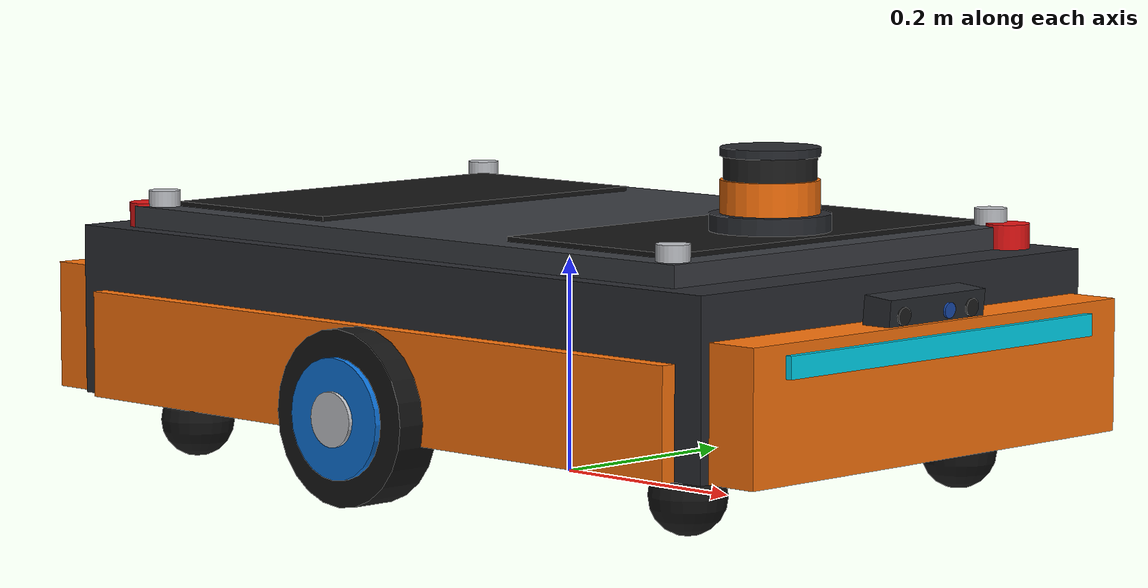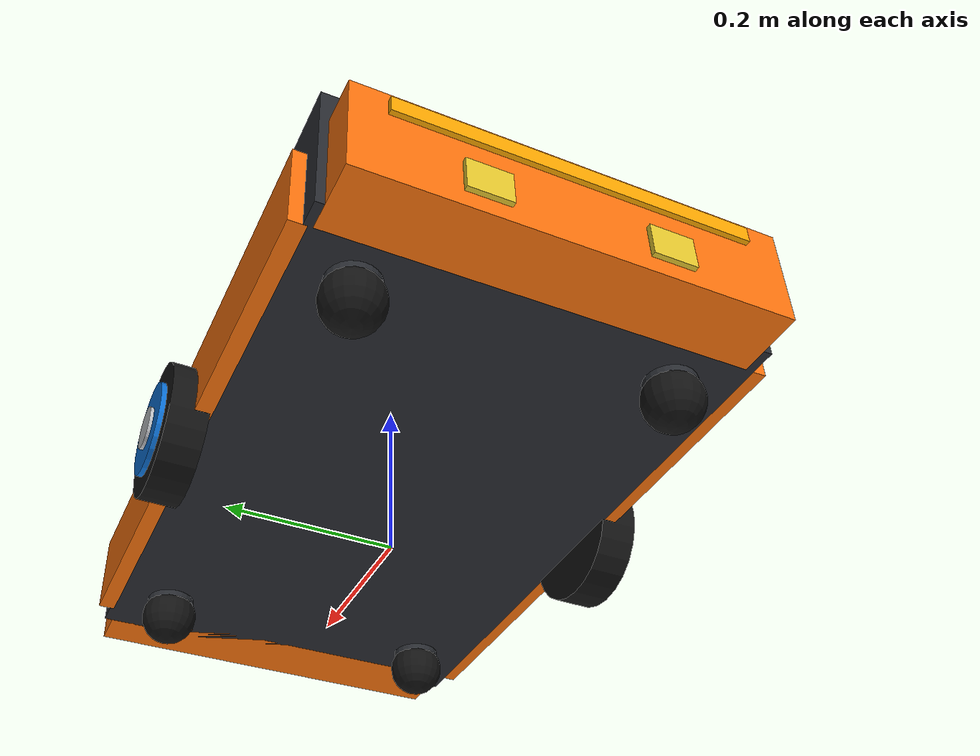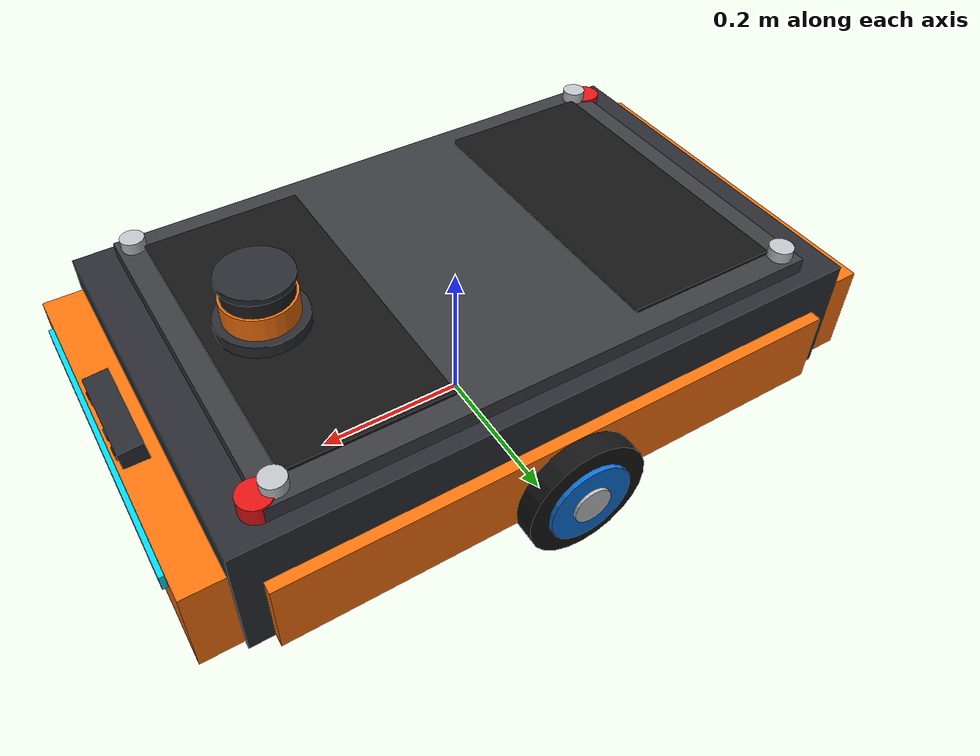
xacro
<?xml version="1.0"?>
<robot xmlns:xacro="http://www.ros.org/wiki/xacro" name="titan_warehouse_amr">

  <!-- ==================== ROBOT CORE DEFINITIONS ==================== -->
  <xacro:include filename="materials.xacro"/>
  <xacro:include filename="inertial_macros.xacro"/>
  <xacro:include filename="chassis.xacro"/>
  <xacro:include filename="wheels.xacro"/>
  <xacro:include filename="lifter.xacro"/>
  <xacro:include filename="sensors.xacro"/>
  <xacro:include filename="gazebo_plugins.xacro"/>

</robot>

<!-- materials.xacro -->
<robot xmlns:xacro="http://www.ros.org/wiki/xacro">

  <material name="industrial_orange">
    <color rgba="0.98 0.45 0.05 1.0"/>
  </material>

  <material name="anthracite_grey">
    <color rgba="0.16 0.17 0.19 1.0"/>
  </material>

  <material name="light_grey">
    <color rgba="0.75 0.76 0.78 1.0"/>
  </material>

  <material name="rubber_black">
    <color rgba="0.08 0.08 0.08 1.0"/>
  </material>

  <material name="rim_blue">
    <color rgba="0.05 0.45 0.85 1.0"/>
  </material>

  <material name="emergency_red">
    <color rgba="0.9 0.08 0.08 1.0"/>
  </material>

  <material name="safety_yellow">
    <color rgba="0.95 0.8 0.05 1.0"/>
  </material>

  <material name="docking_gold">
    <color rgba="0.9 0.78 0.18 1.0"/>
  </material>

  <material name="led_cyan">
    <color rgba="0.0 0.85 0.95 0.9"/>
  </material>

  <material name="led_amber">
    <color rgba="0.98 0.65 0.0 0.9"/>
  </material>

  <material name="camera_black">
    <color rgba="0.12 0.12 0.12 1.0"/>
  </material>

  <material name="sensor_blue">
    <color rgba="0.1 0.3 0.7 1.0"/>
  </material>

  <material name="cargo_bed_dark">
    <color rgba="0.22 0.23 0.25 1.0"/>
  </material>

</robot>

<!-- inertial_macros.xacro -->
<robot xmlns:xacro="http://www.ros.org/wiki/xacro">

  <!-- Inertia for a rectangular cuboid -->
  <xacro:macro name="inertial_box" params="mass x y z *origin">
    <inertial>
      <xacro:insert_block name="origin"/>
      <mass value="${mass}"/>
      <inertia ixx="${(1/12) * mass * (y*y + z*z)}" ixy="0.0" ixz="0.0"
               iyy="${(1/12) * mass * (x*x + z*z)}" iyz="0.0"
               izz="${(1/12) * mass * (x*x + y*y)}"/>
    </inertial>
  </xacro:macro>

  <!-- Inertia for a solid cylinder along Z -->
  <xacro:macro name="inertial_cylinder" params="mass length radius *origin">
    <inertial>
      <xacro:insert_block name="origin"/>
      <mass value="${mass}"/>
      <inertia ixx="${(1/12) * mass * (3*radius*radius + length*length)}" ixy="0.0" ixz="0.0"
               iyy="${(1/12) * mass * (3*radius*radius + length*length)}" iyz="0.0"
               izz="${(1/2) * mass * (radius*radius)}"/>
    </inertial>
  </xacro:macro>

  <!-- Inertia for a solid sphere -->
  <xacro:macro name="inertial_sphere" params="mass radius *origin">
    <inertial>
      <xacro:insert_block name="origin"/>
      <mass value="${mass}"/>
      <inertia ixx="${(2/5) * mass * (radius*radius)}" ixy="0.0" ixz="0.0"
               iyy="${(2/5) * mass * (radius*radius)}" iyz="0.0"
               izz="${(2/5) * mass * (radius*radius)}"/>
    </inertial>
  </xacro:macro>

</robot>

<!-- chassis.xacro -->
<robot xmlns:xacro="http://www.ros.org/wiki/xacro">

  <!-- BASE FOOTPRINT (Ground Projection) -->
  <link name="base_footprint"/>

  <joint name="base_joint" type="fixed">
    <parent link="base_footprint"/>
    <child link="base_link"/>
    <origin xyz="0 0 0.08" rpy="0 0 0"/>
  </joint>

  <!-- BASE LINK (Chassis Structural Core) -->
  <link name="base_link">
    <!-- Main Center Core Body -->
    <visual>
      <origin xyz="0 0 0.06" rpy="0 0 0"/>
      <geometry>
        <box size="0.80 0.50 0.16"/>
      </geometry>
      <material name="anthracite_grey"/>
    </visual>
    <collision>
      <origin xyz="0 0 0.06" rpy="0 0 0"/>
      <geometry>
        <box size="0.80 0.50 0.16"/>
      </geometry>
    </collision>

    <!-- Front Chamfered Safety Bumper -->
    <visual>
      <origin xyz="0.41 0 0.04" rpy="0 0 0"/>
      <geometry>
        <box size="0.08 0.48 0.12"/>
      </geometry>
      <material name="industrial_orange"/>
    </visual>
    <collision>
      <origin xyz="0.41 0 0.04" rpy="0 0 0"/>
      <geometry>
        <box size="0.08 0.48 0.12"/>
      </geometry>
    </collision>

    <!-- Rear Chamfered Bumper with Docking Recess -->
    <visual>
      <origin xyz="-0.41 0 0.04" rpy="0 0 0"/>
      <geometry>
        <box size="0.08 0.48 0.12"/>
      </geometry>
      <material name="industrial_orange"/>
    </visual>
    <collision>
      <origin xyz="-0.41 0 0.04" rpy="0 0 0"/>
      <geometry>
        <box size="0.08 0.48 0.12"/>
      </geometry>
    </collision>

    <!-- Side Skirt Protective Panels Left -->
    <visual>
      <origin xyz="0 0.255 0.03" rpy="0 0 0"/>
      <geometry>
        <box size="0.74 0.02 0.10"/>
      </geometry>
      <material name="industrial_orange"/>
    </visual>

    <!-- Side Skirt Protective Panels Right -->
    <visual>
      <origin xyz="0 -0.255 0.03" rpy="0 0 0"/>
      <geometry>
        <box size="0.74 0.02 0.10"/>
      </geometry>
      <material name="industrial_orange"/>
    </visual>

    <!-- Front LED Status Light Bar (Cyan / Amber Navigation Indicator) -->
    <visual>
      <origin xyz="0.451 0 0.08" rpy="0 0 0"/>
      <geometry>
        <box size="0.01 0.40 0.02"/>
      </geometry>
      <material name="led_cyan"/>
    </visual>

    <!-- Rear LED Status Light Bar (Brake & Docking Indicator) -->
    <visual>
      <origin xyz="-0.451 0 0.08" rpy="0 0 0"/>
      <geometry>
        <box size="0.01 0.40 0.02"/>
      </geometry>
      <material name="led_amber"/>
    </visual>

    <!-- Emergency Stop Button 1 (Front Left) -->
    <visual>
      <origin xyz="0.35 0.21 0.15" rpy="0 0 0"/>
      <geometry>
        <cylinder radius="0.02" length="0.025"/>
      </geometry>
      <material name="emergency_red"/>
    </visual>

    <!-- Emergency Stop Button 2 (Rear Right) -->
    <visual>
      <origin xyz="-0.35 -0.21 0.15" rpy="0 0 0"/>
      <geometry>
        <cylinder radius="0.02" length="0.025"/>
      </geometry>
      <material name="emergency_red"/>
    </visual>

    <!-- Rear Auto-Docking Contact Plates (Left & Right Conductive Terminals) -->
    <visual>
      <origin xyz="-0.452 0.10 0.02" rpy="0 0 0"/>
      <geometry>
        <box size="0.008 0.05 0.04"/>
      </geometry>
      <material name="docking_gold"/>
    </visual>
    <visual>
      <origin xyz="-0.452 -0.10 0.02" rpy="0 0 0"/>
      <geometry>
        <box size="0.008 0.05 0.04"/>
      </geometry>
      <material name="docking_gold"/>
    </visual>

    <!-- Inertial Parameters for AMR Chassis -->
    <xacro:inertial_box mass="32.0" x="0.85" y="0.54" z="0.20">
      <origin xyz="0 0 0.05" rpy="0 0 0"/>
    </xacro:inertial_box>
  </link>

  <!-- Gazebo Material and Friction settings for Chassis -->
  <gazebo reference="base_link">
    <material>Gazebo/DarkGrey</material>
    <mu1>0.2</mu1>
    <mu2>0.2</mu2>
  </gazebo>

</robot>

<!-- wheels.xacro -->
<robot xmlns:xacro="http://www.ros.org/wiki/xacro">

  <!-- DRIVE WHEEL MACRO -->
  <xacro:macro name="drive_wheel" params="prefix y_offset reflect">
    <link name="${prefix}_wheel">
      <!-- Outer Rubber Tire -->
      <visual>
        <origin xyz="0 0 0" rpy="${pi/2} 0 0"/>
        <geometry>
          <cylinder radius="0.08" length="0.045"/>
        </geometry>
        <material name="rubber_black"/>
      </visual>

      <!-- Inner Alloy Rim -->
      <visual>
        <origin xyz="0 ${reflect * 0.005} 0" rpy="${pi/2} 0 0"/>
        <geometry>
          <cylinder radius="0.055" length="0.047"/>
        </geometry>
        <material name="rim_blue"/>
      </visual>

      <!-- Wheel Axle Hub Cap -->
      <visual>
        <origin xyz="0 ${reflect * 0.015} 0" rpy="${pi/2} 0 0"/>
        <geometry>
          <cylinder radius="0.025" length="0.035"/>
        </geometry>
        <material name="light_grey"/>
      </visual>

      <collision>
        <origin xyz="0 0 0" rpy="${pi/2} 0 0"/>
        <geometry>
          <cylinder radius="0.08" length="0.045"/>
        </geometry>
      </collision>

      <xacro:inertial_cylinder mass="2.5" length="0.045" radius="0.08">
        <origin xyz="0 0 0" rpy="${pi/2} 0 0"/>
      </xacro:inertial_cylinder>
    </link>

    <joint name="${prefix}_wheel_joint" type="continuous">
      <parent link="base_link"/>
      <child link="${prefix}_wheel"/>
      <origin xyz="0 ${y_offset} 0" rpy="0 0 0"/>
      <axis xyz="0 1 0"/>
    </joint>

    <gazebo reference="${prefix}_wheel">
      <material>Gazebo/FlatBlack</material>
      <mu1>1.8</mu1>
      <mu2>1.8</mu2>
      <kp>1000000.0</kp>
      <kd>100.0</kd>
      <minDepth>0.001</minDepth>
      <maxVel>1.5</maxVel>
    </gazebo>
  </xacro:macro>

  <!-- INSTANTIATE DRIVE WHEELS -->
  <xacro:drive_wheel prefix="left" y_offset="0.27" reflect="1"/>
  <xacro:drive_wheel prefix="right" y_offset="-0.27" reflect="-1"/>

  <!-- CASTER WHEEL MACRO -->
  <xacro:macro name="caster_wheel" params="prefix x_offset y_offset">
    <!-- Caster Bracket / Swivel Mount -->
    <link name="${prefix}_caster_mount">
      <visual>
        <origin xyz="0 0 0" rpy="0 0 0"/>
        <geometry>
          <cylinder radius="0.03" length="0.04"/>
        </geometry>
        <material name="anthracite_grey"/>
      </visual>
      <collision>
        <origin xyz="0 0 0" rpy="0 0 0"/>
        <geometry>
          <cylinder radius="0.03" length="0.04"/>
        </geometry>
      </collision>
      <xacro:inertial_cylinder mass="0.5" length="0.04" radius="0.03">
        <origin xyz="0 0 0" rpy="0 0 0"/>
      </xacro:inertial_cylinder>
    </link>

    <joint name="${prefix}_caster_mount_joint" type="fixed">
      <parent link="base_link"/>
      <child link="${prefix}_caster_mount"/>
      <origin xyz="${x_offset} ${y_offset} -0.025" rpy="0 0 0"/>
    </joint>

    <!-- Caster Rolling Wheel -->
    <link name="${prefix}_caster_wheel">
      <visual>
        <origin xyz="0 0 0" rpy="0 0 0"/>
        <geometry>
          <sphere radius="0.035"/>
        </geometry>
        <material name="rubber_black"/>
      </visual>
      <collision>
        <origin xyz="0 0 0" rpy="0 0 0"/>
        <geometry>
          <sphere radius="0.035"/>
        </geometry>
      </collision>
      <xacro:inertial_sphere mass="0.8" radius="0.035">
        <origin xyz="0 0 0" rpy="0 0 0"/>
      </xacro:inertial_sphere>
    </link>

    <joint name="${prefix}_caster_wheel_joint" type="fixed">
      <parent link="${prefix}_caster_mount"/>
      <child link="${prefix}_caster_wheel"/>
      <origin xyz="0 0 -0.02" rpy="0 0 0"/>
    </joint>

    <gazebo reference="${prefix}_caster_wheel">
      <material>Gazebo/DarkGrey</material>
      <mu1>0.001</mu1>
      <mu2>0.001</mu2>
      <kp>1000000.0</kp>
      <kd>100.0</kd>
      <minDepth>0.001</minDepth>
    </gazebo>
  </xacro:macro>

  <!-- 4-POINT STABILITY CASTERS -->
  <xacro:caster_wheel prefix="front_left" x_offset="0.32" y_offset="0.18"/>
  <xacro:caster_wheel prefix="front_right" x_offset="0.32" y_offset="-0.18"/>
  <xacro:caster_wheel prefix="rear_left" x_offset="-0.32" y_offset="0.18"/>
  <xacro:caster_wheel prefix="rear_right" x_offset="-0.32" y_offset="-0.18"/>

</robot>

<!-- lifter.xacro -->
<robot xmlns:xacro="http://www.ros.org/wiki/xacro">

  <!-- LIFTER TOP CARGO BED -->
  <link name="lifter_plate">
    <!-- Main Top Load-Bearing Platform -->
    <visual>
      <origin xyz="0 0 0" rpy="0 0 0"/>
      <geometry>
        <box size="0.70 0.46 0.02"/>
      </geometry>
      <material name="cargo_bed_dark"/>
    </visual>
    <collision>
      <origin xyz="0 0 0" rpy="0 0 0"/>
      <geometry>
        <box size="0.70 0.46 0.02"/>
      </geometry>
    </collision>

    <!-- High-Grip Rubber Friction Pads (Front & Rear) -->
    <visual>
      <origin xyz="0.22 0 0.012" rpy="0 0 0"/>
      <geometry>
        <box size="0.20 0.40 0.005"/>
      </geometry>
      <material name="rubber_black"/>
    </visual>
    <visual>
      <origin xyz="-0.22 0 0.012" rpy="0 0 0"/>
      <geometry>
        <box size="0.20 0.40 0.005"/>
      </geometry>
      <material name="rubber_black"/>
    </visual>

    <!-- Corner Alignment Guide Rollers -->
    <visual>
      <origin xyz="0.33 0.21 0.015" rpy="0 0 0"/>
      <geometry>
        <cylinder radius="0.015" length="0.02"/>
      </geometry>
      <material name="light_grey"/>
    </visual>
    <visual>
      <origin xyz="0.33 -0.21 0.015" rpy="0 0 0"/>
      <geometry>
        <cylinder radius="0.015" length="0.02"/>
      </geometry>
      <material name="light_grey"/>
    </visual>
    <visual>
      <origin xyz="-0.33 0.21 0.015" rpy="0 0 0"/>
      <geometry>
        <cylinder radius="0.015" length="0.02"/>
      </geometry>
      <material name="light_grey"/>
    </visual>
    <visual>
      <origin xyz="-0.33 -0.21 0.015" rpy="0 0 0"/>
      <geometry>
        <cylinder radius="0.015" length="0.02"/>
      </geometry>
      <material name="light_grey"/>
    </visual>

    <xacro:inertial_box mass="4.0" x="0.70" y="0.46" z="0.03">
      <origin xyz="0 0 0" rpy="0 0 0"/>
    </xacro:inertial_box>
  </link>

  <!-- PRISMATIC JOINT FOR VERTICAL LIFT MECHANISM -->
  <joint name="lifter_joint" type="prismatic">
    <parent link="base_link"/>
    <child link="lifter_plate"/>
    <origin xyz="0 0 0.15" rpy="0 0 0"/>
    <axis xyz="0 0 1"/>
    <limit lower="0.0" upper="0.06" effort="2000.0" velocity="0.05"/>
    <dynamics damping="10.0" friction="5.0"/>
  </joint>

  <gazebo reference="lifter_plate">
    <material>Gazebo/Grey</material>
    <mu1>2.0</mu1>
    <mu2>2.0</mu2>
    <kp>1000000.0</kp>
    <kd>1.0</kd>
  </gazebo>

</robot>

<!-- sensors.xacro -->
<robot xmlns:xacro="http://www.ros.org/wiki/xacro">

  <!-- ==================== 1. 2D / 3D LIDAR SENSOR ==================== -->
  <link name="lidar_mount">
    <visual>
      <origin xyz="0 0 0" rpy="0 0 0"/>
      <geometry>
        <cylinder radius="0.055" length="0.04"/>
      </geometry>
      <material name="anthracite_grey"/>
    </visual>
    <collision>
      <origin xyz="0 0 0" rpy="0 0 0"/>
      <geometry>
        <cylinder radius="0.055" length="0.04"/>
      </geometry>
    </collision>
    <xacro:inertial_cylinder mass="0.3" length="0.04" radius="0.055">
      <origin xyz="0 0 0" rpy="0 0 0"/>
    </xacro:inertial_cylinder>
  </link>

  <joint name="lidar_mount_joint" type="fixed">
    <parent link="base_link"/>
    <child link="lidar_mount"/>
    <origin xyz="0.25 0 0.16" rpy="0 0 0"/>
  </joint>

  <link name="lidar_link">
    <!-- Scanner Lower Housing -->
    <visual>
      <origin xyz="0 0 0.015" rpy="0 0 0"/>
      <geometry>
        <cylinder radius="0.045" length="0.03"/>
      </geometry>
      <material name="industrial_orange"/>
    </visual>
    <!-- Scanner Rotating Optical Window -->
    <visual>
      <origin xyz="0 0 0.04" rpy="0 0 0"/>
      <geometry>
        <cylinder radius="0.042" length="0.025"/>
      </geometry>
      <material name="camera_black"/>
    </visual>
    <!-- Scanner Top Protective Cap -->
    <visual>
      <origin xyz="0 0 0.055" rpy="0 0 0"/>
      <geometry>
        <cylinder radius="0.045" length="0.008"/>
      </geometry>
      <material name="anthracite_grey"/>
    </visual>
    <collision>
      <origin xyz="0 0 0.035" rpy="0 0 0"/>
      <geometry>
        <cylinder radius="0.048" length="0.07"/>
      </geometry>
    </collision>
    <xacro:inertial_cylinder mass="0.5" length="0.07" radius="0.045">
      <origin xyz="0 0 0.035" rpy="0 0 0"/>
    </xacro:inertial_cylinder>
  </link>

  <joint name="lidar_joint" type="fixed">
    <parent link="lidar_mount"/>
    <child link="lidar_link"/>
    <origin xyz="0 0 0.02" rpy="0 0 0"/>
  </joint>

  <!-- ==================== 2. RGB-D DEPTH CAMERA ==================== -->
  <!-- Industrial Stereo Depth Camera (Intel RealSense D435i / OAK-D style) -->
  <link name="camera_link">
    <!-- Main Aluminum Housing -->
    <visual>
      <origin xyz="0 0 0" rpy="0 0 0"/>
      <geometry>
        <box size="0.03 0.125 0.03"/>
      </geometry>
      <material name="anthracite_grey"/>
    </visual>
    <!-- Left Stereo IR Lens -->
    <visual>
      <origin xyz="0.015 0.045 0" rpy="0 1.5708 0"/>
      <geometry>
        <cylinder radius="0.008" length="0.004"/>
      </geometry>
      <material name="camera_black"/>
    </visual>
    <!-- RGB Center Sensor Lens -->
    <visual>
      <origin xyz="0.015 0.015 0" rpy="0 1.5708 0"/>
      <geometry>
        <cylinder radius="0.007" length="0.004"/>
      </geometry>
      <material name="sensor_blue"/>
    </visual>
    <!-- Right Stereo IR Lens -->
    <visual>
      <origin xyz="0.015 -0.045 0" rpy="0 1.5708 0"/>
      <geometry>
        <cylinder radius="0.008" length="0.004"/>
      </geometry>
      <material name="camera_black"/>
    </visual>
    <collision>
      <origin xyz="0 0 0" rpy="0 0 0"/>
      <geometry>
        <box size="0.03 0.125 0.03"/>
      </geometry>
    </collision>
    <xacro:inertial_box mass="0.15" x="0.03" y="0.125" z="0.03">
      <origin xyz="0 0 0" rpy="0 0 0"/>
    </xacro:inertial_box>
  </link>

  <joint name="camera_joint" type="fixed">
    <parent link="base_link"/>
    <child link="camera_link"/>
    <origin xyz="0.43 0 0.11" rpy="0 0.087 0"/>
  </joint>

  <!-- Standard ROS Optical Frame (Z forward, X right, Y down) -->
  <link name="camera_depth_optical_frame"/>
  <joint name="camera_depth_optical_joint" type="fixed">
    <parent link="camera_link"/>
    <child link="camera_depth_optical_frame"/>
    <origin xyz="0 0 0" rpy="${-pi/2} 0 ${-pi/2}"/>
  </joint>

  <link name="camera_rgb_optical_frame"/>
  <joint name="camera_rgb_optical_joint" type="fixed">
    <parent link="camera_link"/>
    <child link="camera_rgb_optical_frame"/>
    <origin xyz="0 0 0" rpy="${-pi/2} 0 ${-pi/2}"/>
  </joint>

  <!-- ==================== 3. 6-DOF IMU SENSOR ==================== -->
  <link name="imu_link">
    <visual>
      <origin xyz="0 0 0" rpy="0 0 0"/>
      <geometry>
        <box size="0.025 0.025 0.01"/>
      </geometry>
      <material name="sensor_blue"/>
    </visual>
    <collision>
      <origin xyz="0 0 0" rpy="0 0 0"/>
      <geometry>
        <box size="0.025 0.025 0.01"/>
      </geometry>
    </collision>
    <xacro:inertial_box mass="0.05" x="0.025" y="0.025" z="0.01">
      <origin xyz="0 0 0" rpy="0 0 0"/>
    </xacro:inertial_box>
  </link>

  <joint name="imu_joint" type="fixed">
    <parent link="base_link"/>
    <child link="imu_link"/>
    <origin xyz="0 0 0.06" rpy="0 0 0"/>
  </joint>

  <!-- ==================== 4. CORNER ULTRASONIC RANGE SENSORS ==================== -->
  <xacro:macro name="ultrasonic_sensor" params="prefix x_pos y_pos yaw_angle">
    <link name="${prefix}_sonar_link">
      <visual>
        <origin xyz="0 0 0" rpy="0 1.5708 0"/>
        <geometry>
          <cylinder radius="0.012" length="0.015"/>
        </geometry>
        <material name="anthracite_grey"/>
      </visual>
      <collision>
        <origin xyz="0 0 0" rpy="0 1.5708 0"/>
        <geometry>
          <cylinder radius="0.012" length="0.015"/>
        </geometry>
      </collision>
      <xacro:inertial_cylinder mass="0.02" length="0.015" radius="0.012">
        <origin xyz="0 0 0" rpy="0 1.5708 0"/>
      </xacro:inertial_cylinder>
    </link>

    <joint name="${prefix}_sonar_joint" type="fixed">
      <parent link="base_link"/>
      <child link="${prefix}_sonar_link"/>
      <origin xyz="${x_pos} ${y_pos} 0.04" rpy="0 0 ${yaw_angle}"/>
    </joint>
  </xacro:macro>

  <xacro:ultrasonic_sensor prefix="front_left" x_pos="0.43" y_pos="0.22" yaw_angle="0.523"/>
  <xacro:ultrasonic_sensor prefix="front_right" x_pos="0.43" y_pos="-0.22" yaw_angle="-0.523"/>
  <xacro:ultrasonic_sensor prefix="rear_left" x_pos="-0.43" y_pos="0.22" yaw_angle="2.618"/>
  <xacro:ultrasonic_sensor prefix="rear_right" x_pos="-0.43" y_pos="-0.22" yaw_angle="-2.618"/>

</robot>
